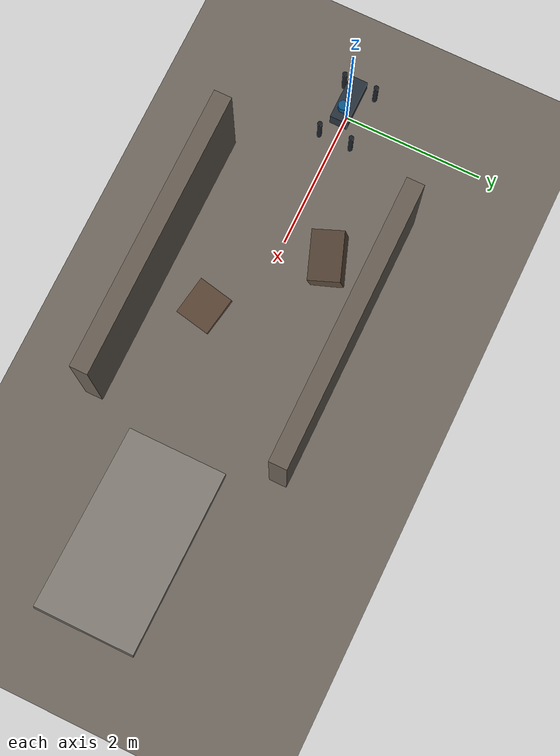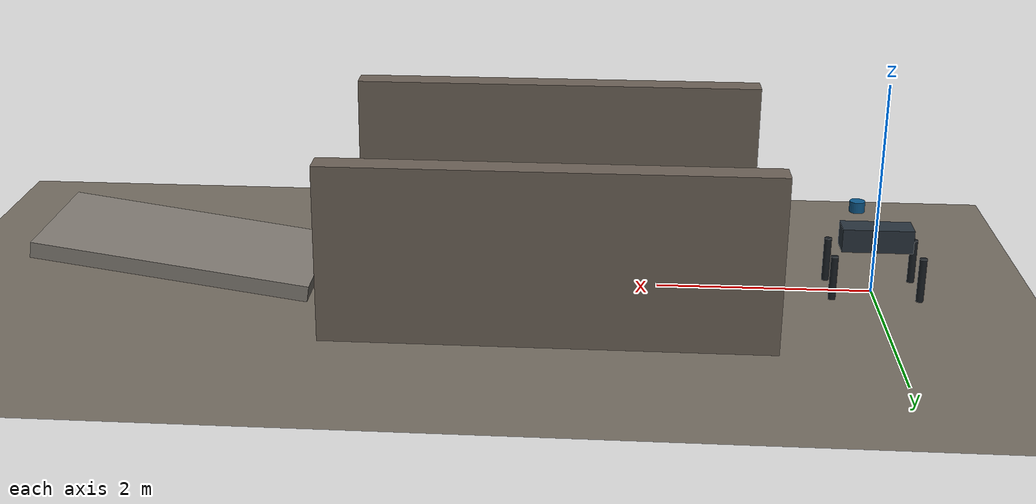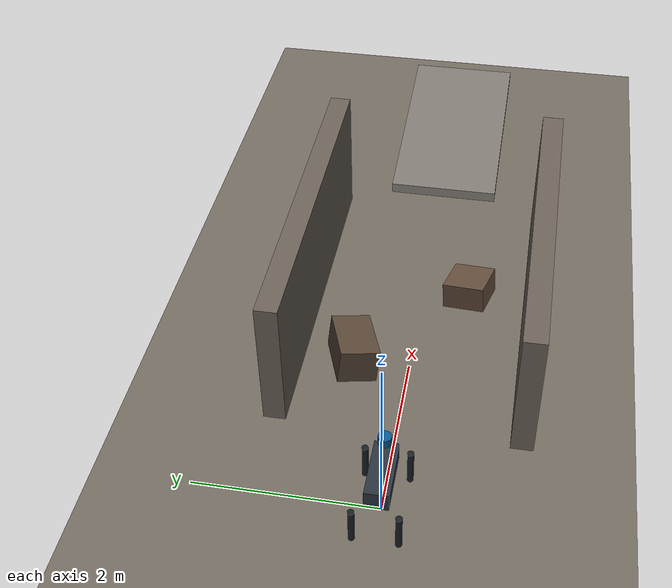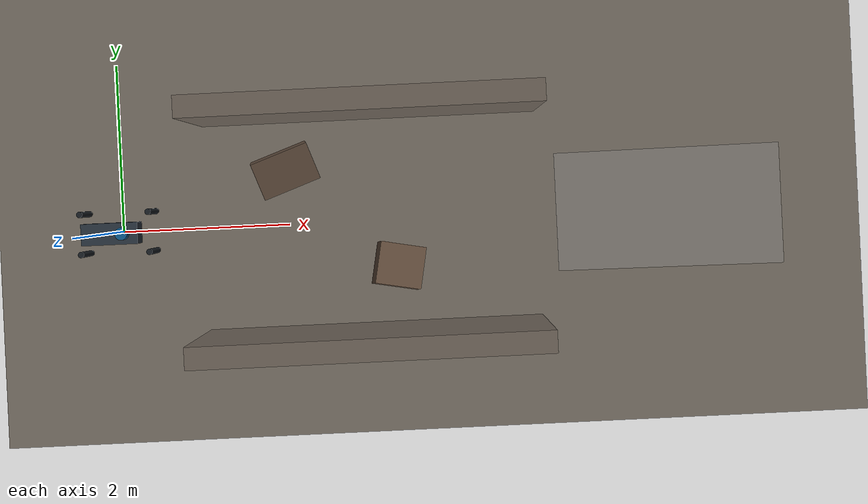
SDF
<?xml version="1.0"?>
<!-- Copyright 2026 Kookmin AI Lab, Apache-2.0 -->
<sdf version="1.8">
  <world name="vision60_disaster_test">
    <physics name="1ms" type="ignored">
      <max_step_size>0.001</max_step_size>
      <real_time_factor>1.0</real_time_factor>
    </physics>
    <plugin filename="ignition-gazebo-physics-system" name="gz::sim::systems::Physics"/>
    <plugin filename="ignition-gazebo-user-commands-system" name="gz::sim::systems::UserCommands"/>
    <plugin filename="ignition-gazebo-scene-broadcaster-system" name="gz::sim::systems::SceneBroadcaster"/>
    <plugin filename="ignition-gazebo-sensors-system" name="gz::sim::systems::Sensors">
      <render_engine>ogre2</render_engine>
    </plugin>
    <plugin filename="ignition-gazebo-imu-system" name="gz::sim::systems::Imu"/>

    <light type="directional" name="sun">
      <pose>0 0 10 0 0 0</pose>
      <diffuse>0.8 0.8 0.8 1</diffuse>
      <specular>0.2 0.2 0.2 1</specular>
      <direction>-0.5 0.1 -0.9</direction>
    </light>

    <model name="ground_plane">
      <static>true</static>
      <link name="ground">
        <collision name="collision">
          <geometry><plane><normal>0 0 1</normal><size>40 40</size></plane></geometry>
          <surface><friction><ode><mu>1.0</mu><mu2>1.0</mu2></ode></friction></surface>
        </collision>
        <visual name="visual">
          <geometry><plane><normal>0 0 1</normal><size>40 40</size></plane></geometry>
          <material><ambient>0.25 0.24 0.22 1</ambient><diffuse>0.45 0.42 0.38 1</diffuse></material>
        </visual>
      </link>
    </model>

    <model name="collapsed_wall_left">
      <static>true</static><pose>3.0 1.35 0.8 0 0 0</pose>
      <link name="wall"><collision name="collision"><geometry><box><size>4.0 0.25 1.6</size></box></geometry></collision><visual name="visual"><geometry><box><size>4.0 0.25 1.6</size></box></geometry><material><diffuse>0.42 0.38 0.34 1</diffuse></material></visual></link>
    </model>
    <model name="collapsed_wall_right">
      <static>true</static><pose>3.0 -1.35 0.8 0 0 0</pose>
      <link name="wall"><collision name="collision"><geometry><box><size>4.0 0.25 1.6</size></box></geometry></collision><visual name="visual"><geometry><box><size>4.0 0.25 1.6</size></box></geometry><material><diffuse>0.42 0.38 0.34 1</diffuse></material></visual></link>
    </model>
    <model name="rubble_block_1">
      <static>true</static><pose>2.0 0.65 0.20 0.15 0.10 0.35</pose>
      <link name="rubble"><collision name="collision"><geometry><box><size>0.70 0.45 0.40</size></box></geometry></collision><visual name="visual"><geometry><box><size>0.70 0.45 0.40</size></box></geometry><material><diffuse>0.35 0.28 0.22 1</diffuse></material></visual></link>
    </model>
    <model name="rubble_block_2">
      <static>true</static><pose>3.3 -0.55 0.15 -0.12 0.18 -0.2</pose>
      <link name="rubble"><collision name="collision"><geometry><box><size>0.55 0.50 0.30</size></box></geometry></collision><visual name="visual"><geometry><box><size>0.55 0.50 0.30</size></box></geometry><material><diffuse>0.40 0.31 0.24 1</diffuse></material></visual></link>
    </model>
    <model name="inclined_slab">
      <static>true</static><pose>6.5 0 0.28 0 -0.14 0</pose>
      <link name="slab"><collision name="collision"><geometry><box><size>2.6 1.4 0.15</size></box></geometry></collision><visual name="visual"><geometry><box><size>2.6 1.4 0.15</size></box></geometry><material><diffuse>0.50 0.48 0.45 1</diffuse></material></visual></link>
    </model>

    <include><uri>model://vision60</uri><name>vision60</name></include>
  </world>
</sdf>

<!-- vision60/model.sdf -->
<!-- Copyright 2026 Kookmin AI Lab, Apache-2.0 -->
<sdf version="1.8">
  <model name="vision60">
    <pose>0 0 0.55 0 0 0</pose>
    <static>false</static>
    <self_collide>false</self_collide>
    <link name="base_link">
      <inertial>
        <mass>51.0</mass>
        <inertia>
          <ixx>0.471325</ixx>
          <iyy>2.001325</iyy>
          <izz>2.061250</izz>
        </inertia>
      </inertial>

      <collision name="body_collision">
        <geometry><box><size>0.65 0.25 0.22</size></box></geometry>
        <surface>
          <friction><ode><mu>1.2</mu><mu2>1.2</mu2></ode></friction>
        </surface>
      </collision>
      <visual name="body_visual">
        <geometry><box><size>0.65 0.25 0.22</size></box></geometry>
        <material>
          <ambient>0.08 0.10 0.12 1</ambient>
          <diffuse>0.16 0.20 0.24 1</diffuse>
          <specular>0.35 0.35 0.35 1</specular>
        </material>
      </visual>

      <collision name="front_left_leg_collision">
        <pose>0.40 0.235 -0.32 0 0 0</pose>
        <geometry><cylinder><radius>0.035</radius><length>0.42</length></cylinder></geometry>
      </collision>
      <visual name="front_left_leg_visual">
        <pose>0.40 0.235 -0.32 0 0 0</pose>
        <geometry><cylinder><radius>0.035</radius><length>0.42</length></cylinder></geometry>
        <material><diffuse>0.10 0.12 0.14 1</diffuse></material>
      </visual>
      <collision name="front_right_leg_collision">
        <pose>0.40 -0.235 -0.32 0 0 0</pose>
        <geometry><cylinder><radius>0.035</radius><length>0.42</length></cylinder></geometry>
      </collision>
      <visual name="front_right_leg_visual">
        <pose>0.40 -0.235 -0.32 0 0 0</pose>
        <geometry><cylinder><radius>0.035</radius><length>0.42</length></cylinder></geometry>
        <material><diffuse>0.10 0.12 0.14 1</diffuse></material>
      </visual>
      <collision name="rear_left_leg_collision">
        <pose>-0.40 0.235 -0.32 0 0 0</pose>
        <geometry><cylinder><radius>0.035</radius><length>0.42</length></cylinder></geometry>
      </collision>
      <visual name="rear_left_leg_visual">
        <pose>-0.40 0.235 -0.32 0 0 0</pose>
        <geometry><cylinder><radius>0.035</radius><length>0.42</length></cylinder></geometry>
        <material><diffuse>0.10 0.12 0.14 1</diffuse></material>
      </visual>
      <collision name="rear_right_leg_collision">
        <pose>-0.40 -0.235 -0.32 0 0 0</pose>
        <geometry><cylinder><radius>0.035</radius><length>0.42</length></cylinder></geometry>
      </collision>
      <visual name="rear_right_leg_visual">
        <pose>-0.40 -0.235 -0.32 0 0 0</pose>
        <geometry><cylinder><radius>0.035</radius><length>0.42</length></cylinder></geometry>
        <material><diffuse>0.10 0.12 0.14 1</diffuse></material>
      </visual>

      <collision name="front_left_foot_collision">
        <pose>0.40 0.235 -0.53 0 0 0</pose>
        <geometry><sphere><radius>0.05</radius></sphere></geometry>
        <surface><friction><ode><mu>1.4</mu><mu2>1.4</mu2></ode></friction></surface>
      </collision>
      <collision name="front_right_foot_collision">
        <pose>0.40 -0.235 -0.53 0 0 0</pose>
        <geometry><sphere><radius>0.05</radius></sphere></geometry>
        <surface><friction><ode><mu>1.4</mu><mu2>1.4</mu2></ode></friction></surface>
      </collision>
      <collision name="rear_left_foot_collision">
        <pose>-0.40 0.235 -0.53 0 0 0</pose>
        <geometry><sphere><radius>0.05</radius></sphere></geometry>
        <surface><friction><ode><mu>1.4</mu><mu2>1.4</mu2></ode></friction></surface>
      </collision>
      <collision name="rear_right_foot_collision">
        <pose>-0.40 -0.235 -0.53 0 0 0</pose>
        <geometry><sphere><radius>0.05</radius></sphere></geometry>
        <surface><friction><ode><mu>1.4</mu><mu2>1.4</mu2></ode></friction></surface>
      </collision>

      <visual name="sensor_head_visual">
        <pose>0.20 0 0.30 0 0 0</pose>
        <geometry><cylinder><radius>0.07</radius><length>0.10</length></cylinder></geometry>
        <material><diffuse>0.05 0.35 0.55 1</diffuse></material>
      </visual>

      <sensor name="imu" type="imu">
        <always_on>true</always_on>
        <update_rate>100</update_rate>
        <topic>vision60/sim/imu</topic>
        <gz_frame_id>base_link</gz_frame_id>
        <imu>
          <angular_velocity>
            <x><noise type="gaussian"><mean>0</mean><stddev>0.0002</stddev></noise></x>
            <y><noise type="gaussian"><mean>0</mean><stddev>0.0002</stddev></noise></y>
            <z><noise type="gaussian"><mean>0</mean><stddev>0.0002</stddev></noise></z>
          </angular_velocity>
          <linear_acceleration>
            <x><noise type="gaussian"><mean>0</mean><stddev>0.002</stddev></noise></x>
            <y><noise type="gaussian"><mean>0</mean><stddev>0.002</stddev></noise></y>
            <z><noise type="gaussian"><mean>0</mean><stddev>0.002</stddev></noise></z>
          </linear_acceleration>
        </imu>
      </sensor>

      <sensor name="ouster" type="gpu_lidar">
        <pose>0.20 0 0.45 0 0 0</pose>
        <always_on>true</always_on>
        <update_rate>10</update_rate>
        <topic>ouster</topic>
        <gz_frame_id>os_sensor</gz_frame_id>
        <lidar>
          <scan>
            <horizontal>
              <samples>640</samples><resolution>1</resolution>
              <min_angle>-3.14159265</min_angle><max_angle>3.14159265</max_angle>
            </horizontal>
            <vertical>
              <samples>16</samples><resolution>1</resolution>
              <min_angle>-0.261799</min_angle><max_angle>0.261799</max_angle>
            </vertical>
          </scan>
          <range><min>0.10</min><max>30.0</max><resolution>0.01</resolution></range>
          <noise><type>gaussian</type><mean>0</mean><stddev>0.01</stddev></noise>
        </lidar>
      </sensor>

      <sensor name="front_camera" type="camera">
        <pose>0.33 0 0.35 0 0 0</pose>
        <always_on>true</always_on>
        <update_rate>10</update_rate>
        <topic>camera/image_raw</topic>
        <gz_frame_id>camera_optical</gz_frame_id>
        <camera name="front_camera">
          <camera_info_topic>camera/camera_info</camera_info_topic>
          <horizontal_fov>1.256637</horizontal_fov>
          <image><width>160</width><height>120</height><format>R8G8B8</format></image>
          <clip><near>0.10</near><far>30.0</far></clip>
          <noise><type>gaussian</type><mean>0</mean><stddev>0.003</stddev></noise>
        </camera>
      </sensor>
    </link>

    <plugin filename="ignition-gazebo-pose-publisher-system"
            name="gz::sim::systems::PosePublisher">
      <publish_model_pose>true</publish_model_pose>
      <publish_link_pose>true</publish_link_pose>
      <publish_sensor_pose>true</publish_sensor_pose>
      <use_pose_vector_msg>true</use_pose_vector_msg>
      <update_frequency>30</update_frequency>
    </plugin>
    <plugin filename="ignition-gazebo-velocity-control-system"
            name="gz::sim::systems::VelocityControl">
      <topic>/model/vision60/cmd_vel</topic>
    </plugin>
  </model>
</sdf>
